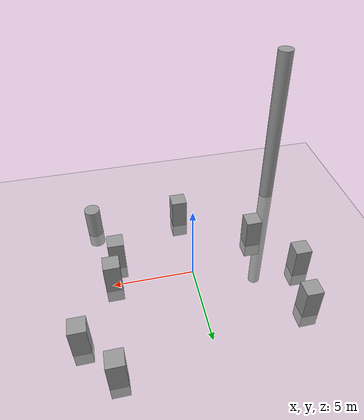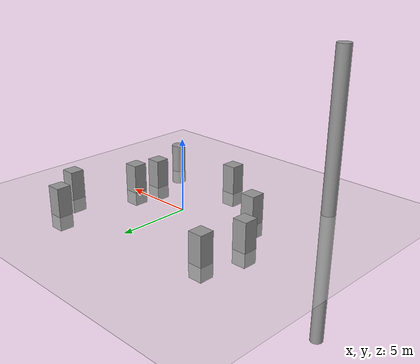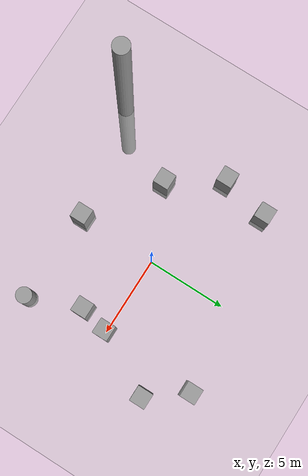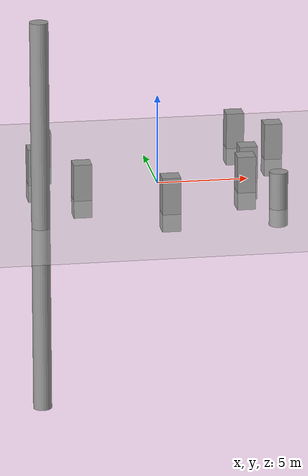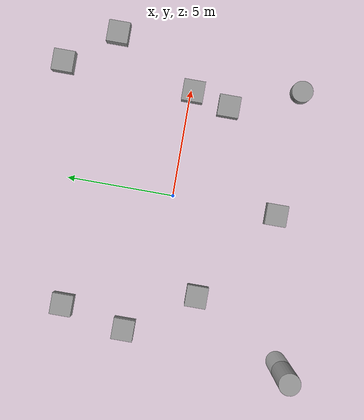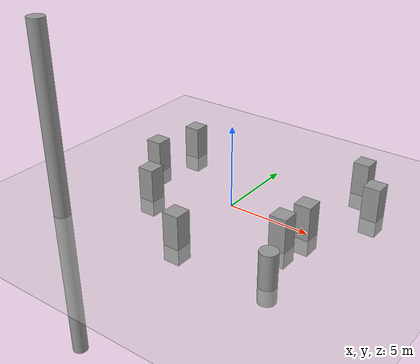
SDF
<sdf version="1.7">
 <world name="default">
  <model name="ground_plane">
   <static>1</static>
   <link name="link">
    <collision name="collision">
     <geometry><plane><normal>0 0 1</normal><size>100 100</size></plane></geometry>
     <surface><friction><ode><mu>0.7</mu><mu2>0.7</mu2></ode></friction></surface>
    </collision>
    <visual name="visual">
     <cast_shadows>0</cast_shadows>
     <geometry><plane><normal>0 0 1</normal><size>100 100</size></plane></geometry>
     <material>
      <script><uri>file://media/materials/scripts/gazebo.material</uri><name>Gazebo/Grey</name></script>
     </material>
    </visual>
   </link>
  </model>
  <light name="sun" type="directional">
   <pose>0 0 10 0 -0 0</pose>
   <diffuse>0.8 0.8 0.8 1</diffuse>
   <specular>0.1 0.1 0.1 1</specular>
   <attenuation>
    <range>1000</range>
    <constant>0.9</constant>
    <linear>0.01</linear>
    <quadratic>0.001</quadratic>
   </attenuation>
   <direction>-0.5 0.5 -1</direction>
   <spot><inner_angle>0</inner_angle><outer_angle>0</outer_angle><falloff>0</falloff></spot>
  </light>
  <gravity>0 0 -9.81</gravity>
  <magnetic_field>6e-06 2.3e-05 -4.2e-05</magnetic_field>
  <atmosphere type="adiabatic"/>
  <physics name="default_physics" default="0" type="ode">
   <max_step_size>0.001</max_step_size>
   <real_time_factor>1</real_time_factor>
   <real_time_update_rate>1000</real_time_update_rate>
  </physics>
  <scene><ambient>0.4 0.4 0.4 1</ambient><background>0.7 0.7 0.7 1</background><shadows>1</shadows></scene>
  <spherical_coordinates>
   <surface_model>EARTH_WGS84</surface_model>
   <latitude_deg>0</latitude_deg>
   <longitude_deg>0</longitude_deg>
   <elevation>0</elevation>
   <heading_deg>0</heading_deg>
  </spherical_coordinates>
  <model name="unit_box">
   <pose>4.9561 -0.110083 0.5 0 -0 0</pose>
   <link name="link">
    <inertial>
     <mass>1</mass>
     <inertia>
      <ixx>0.166667</ixx>
      <ixy>0</ixy>
      <ixz>0</ixz>
      <iyy>0.166667</iyy>
      <iyz>0</iyz>
      <izz>0.166667</izz>
     </inertia>
    </inertial>
    <collision name="collision"><geometry><box><size>1 1 3</size></box></geometry></collision>
    <visual name="visual">
     <geometry><box><size>1 1 3</size></box></geometry>
     <material>
      <script><name>Gazebo/Grey</name><uri>file://media/materials/scripts/gazebo.material</uri></script>
     </material>
    </visual>
   </link>
  </model>
  <model name="unit_box_0">
   <pose>7.05551 3.79162 0.5 0 -0 0</pose>
   <link name="link">
    <inertial>
     <mass>1</mass>
     <inertia>
      <ixx>0.166667</ixx>
      <ixy>0</ixy>
      <ixz>0</ixz>
      <iyy>0.166667</iyy>
      <iyz>0</iyz>
      <izz>0.166667</izz>
     </inertia>
    </inertial>
    <collision name="collision"><geometry><box><size>1 1 3</size></box></geometry></collision>
    <visual name="visual">
     <geometry><box><size>1 1 3</size></box></geometry>
     <material>
      <script><name>Gazebo/Grey</name><uri>file://media/materials/scripts/gazebo.material</uri></script>
     </material>
    </visual>
   </link>
  </model>
  <model name="unit_box_1">
   <pose>5.30754 6.08286 0.5 0 -0 0</pose>
   <link name="link">
    <inertial>
     <mass>1</mass>
     <inertia>
      <ixx>0.166667</ixx>
      <ixy>0</ixy>
      <ixz>0</ixz>
      <iyy>0.166667</iyy>
      <iyz>0</iyz>
      <izz>0.166667</izz>
     </inertia>
    </inertial>
    <collision name="collision"><geometry><box><size>1 1 3</size></box></geometry></collision>
    <visual name="visual">
     <geometry><box><size>1 1 3</size></box></geometry>
     <material>
      <script><name>Gazebo/Grey</name><uri>file://media/materials/scripts/gazebo.material</uri></script>
     </material>
    </visual>
   </link>
  </model>
  <model name="unit_box_2">
   <pose>-0.059893 -4.90616 0.5 0 -0 0</pose>
   <link name="link">
    <inertial>
     <mass>1</mass>
     <inertia>
      <ixx>0.166667</ixx>
      <ixy>0</ixy>
      <ixz>0</ixz>
      <iyy>0.166667</iyy>
      <iyz>0</iyz>
      <izz>0.166667</izz>
     </inertia>
    </inertial>
    <collision name="collision"><geometry><box><size>1 1 3</size></box></geometry></collision>
    <visual name="visual">
     <geometry><box><size>1 1 3</size></box></geometry>
     <material>
      <script><name>Gazebo/Grey</name><uri>file://media/materials/scripts/gazebo.material</uri></script>
     </material>
    </visual>
   </link>
  </model>
  <model name="unit_box_3">
   <pose>-4.42993 -1.89336 0.5 0 -0 0</pose>
   <link name="link">
    <inertial>
     <mass>1</mass>
     <inertia>
      <ixx>0.166667</ixx>
      <ixy>0</ixy>
      <ixz>0</ixz>
      <iyy>0.166667</iyy>
      <iyz>0</iyz>
      <izz>0.166667</izz>
     </inertia>
    </inertial>
    <collision name="collision"><geometry><box><size>1 1 3</size></box></geometry></collision>
    <visual name="visual">
     <geometry><box><size>1 1 3</size></box></geometry>
     <material>
      <script><name>Gazebo/Grey</name><uri>file://media/materials/scripts/gazebo.material</uri></script>
     </material>
    </visual>
   </link>
  </model>
  <model name="unit_box_4">
   <pose>-5.86717 4.21664 0.5 0 -0 0</pose>
   <link name="link">
    <inertial>
     <mass>1</mass>
     <inertia>
      <ixx>0.166667</ixx>
      <ixy>0</ixy>
      <ixz>0</ixz>
      <iyy>0.166667</iyy>
      <iyz>0</iyz>
      <izz>0.166667</izz>
     </inertia>
    </inertial>
    <collision name="collision"><geometry><box><size>1 1 3</size></box></geometry></collision>
    <visual name="visual">
     <geometry><box><size>1 1 3</size></box></geometry>
     <material>
      <script><name>Gazebo/Grey</name><uri>file://media/materials/scripts/gazebo.material</uri></script>
     </material>
    </visual>
   </link>
  </model>
  <model name="unit_cylinder">
   <pose>5.78171 -5.09624 0.5 0 -0 0</pose>
   <link name="link">
    <inertial>
     <mass>1</mass>
     <inertia><ixx>0.145833</ixx><ixy>0</ixy><ixz>0</ixz><iyy>0.145833</iyy><iyz>0</iyz><izz>0.125</izz></inertia>
    </inertial>
    <collision name="collision">
     <geometry><cylinder><radius>0.5</radius><length>3</length></cylinder></geometry>
    </collision>
    <visual name="visual">
     <geometry><cylinder><radius>0.5</radius><length>3</length></cylinder></geometry>
     <material>
      <script><name>Gazebo/Grey</name><uri>file://media/materials/scripts/gazebo.material</uri></script>
     </material>
    </visual>
   </link>
  </model>
  <model name="unit_cylinder_0">
   <pose>-7.23932 -6.45779 0.5 0 -0 0</pose>
   <link name="link">
    <inertial>
     <mass>1</mass>
     <inertia><ixx>0.145833</ixx><ixy>0</ixy><ixz>0</ixz><iyy>0.145833</iyy><iyz>0</iyz><izz>0.125</izz></inertia>
    </inertial>
    <collision name="collision">
     <geometry><cylinder><radius>0.5</radius><length>21.4612</length></cylinder></geometry>
    </collision>
    <visual name="visual">
     <geometry><cylinder><radius>0.5</radius><length>21.4612</length></cylinder></geometry>
     <material>
      <script><name>Gazebo/Grey</name><uri>file://media/materials/scripts/gazebo.material</uri></script>
     </material>
    </visual>
   </link>
  </model>
  <model name="unit_box_5">
   <pose>-6.51809 1.20594 0.5 0 -0 0</pose>
   <link name="link">
    <inertial>
     <mass>1</mass>
     <inertia>
      <ixx>0.166667</ixx>
      <ixy>0</ixy>
      <ixz>0</ixz>
      <iyy>0.166667</iyy>
      <iyz>0</iyz>
      <izz>0.166667</izz>
     </inertia>
    </inertial>
    <collision name="collision"><geometry><box><size>1 1 3</size></box></geometry></collision>
    <visual name="visual">
     <geometry><box><size>1 1 3</size></box></geometry>
     <material>
      <script><name>Gazebo/Grey</name><uri>file://media/materials/scripts/gazebo.material</uri></script>
     </material>
    </visual>
   </link>
  </model>
  <model name="unit_box_6">
   <pose>4.54234 -1.86397 0.5 0 -0 0</pose>
   <link name="link">
    <inertial>
     <mass>1</mass>
     <inertia>
      <ixx>0.166667</ixx>
      <ixy>0</ixy>
      <ixz>0</ixz>
      <iyy>0.166667</iyy>
      <iyz>0</iyz>
      <izz>0.166667</izz>
     </inertia>
    </inertial>
    <collision name="collision"><geometry><box><size>1 1 3</size></box></geometry></collision>
    <visual name="visual">
     <geometry><box><size>1 1 3</size></box></geometry>
     <material>
      <script><name>Gazebo/Grey</name><uri>file://media/materials/scripts/gazebo.material</uri></script>
     </material>
    </visual>
   </link>
  </model>
 </world>
</sdf>
